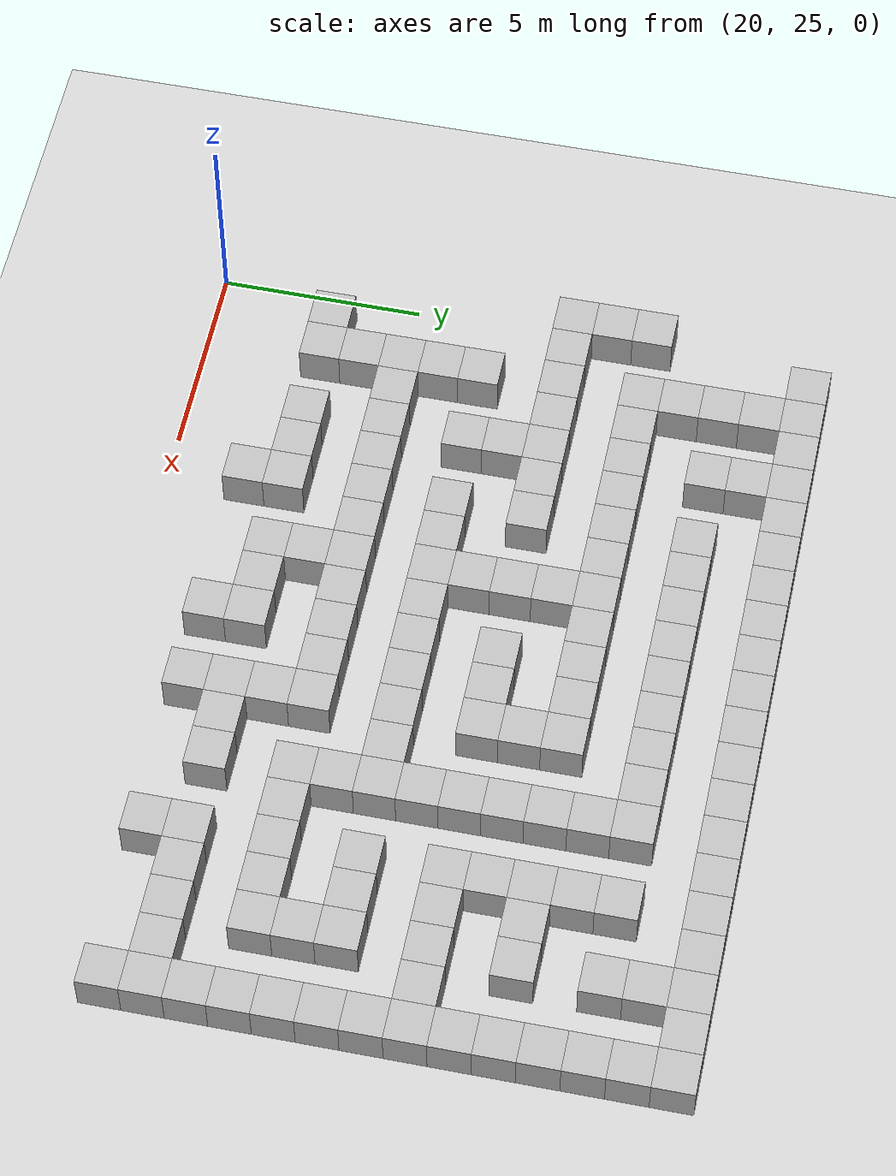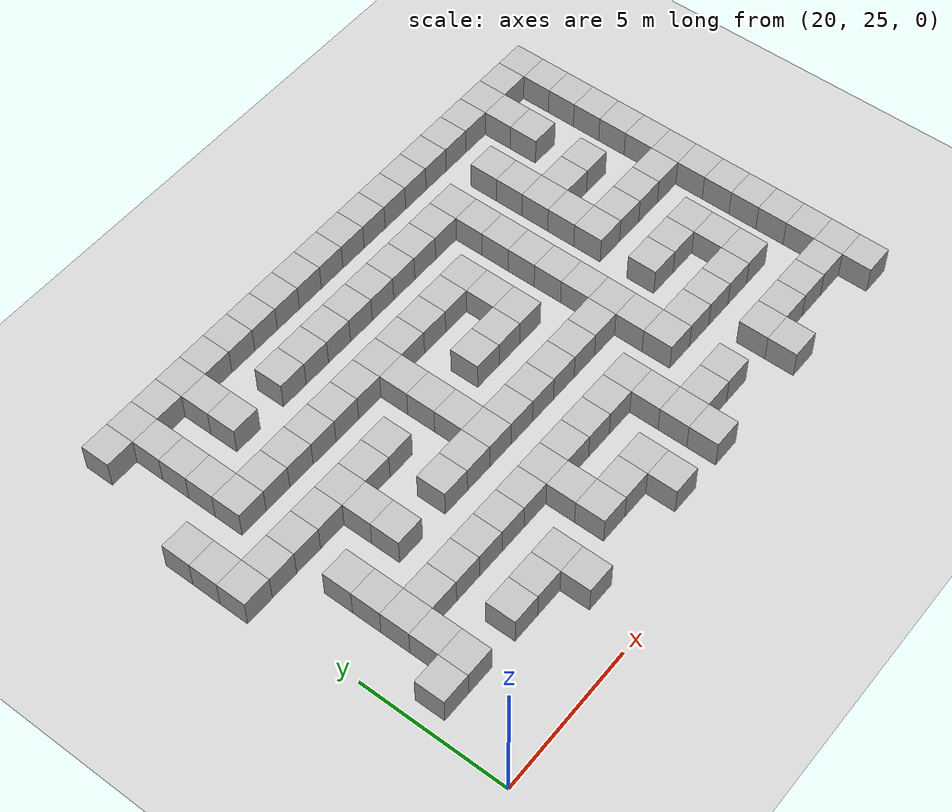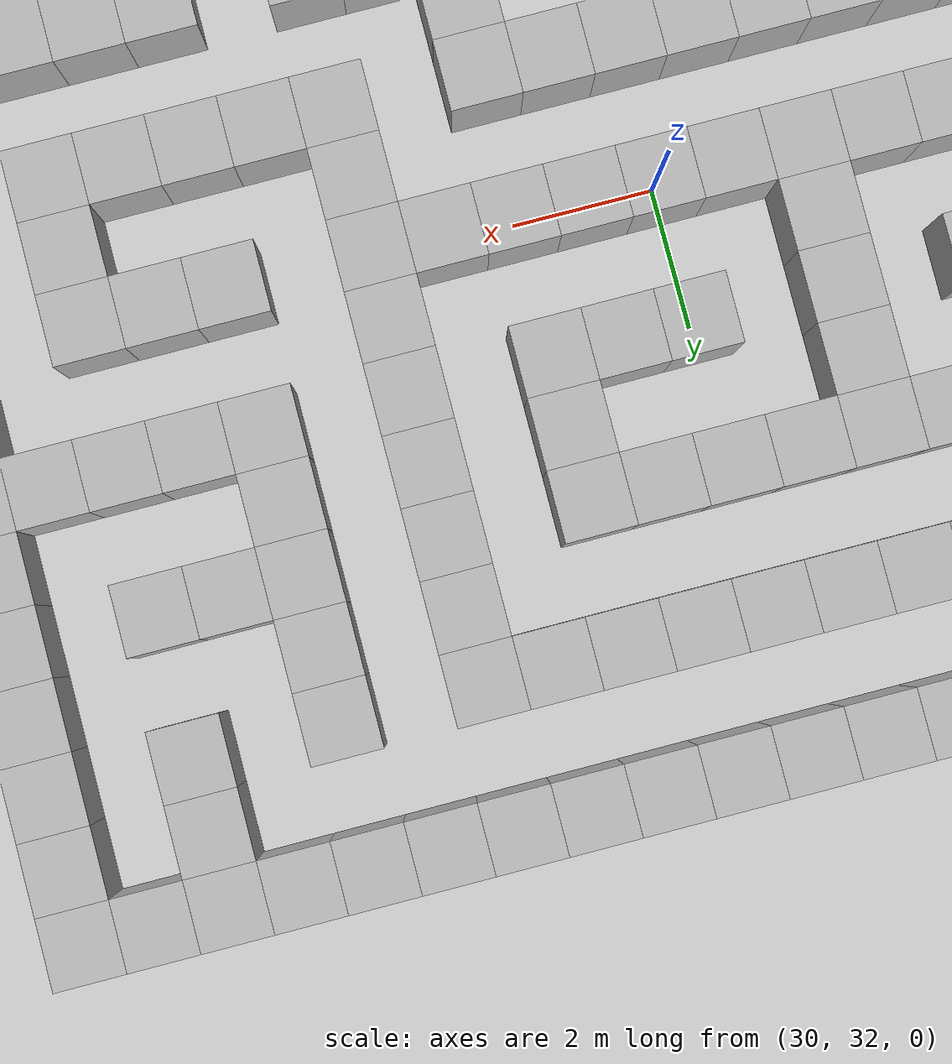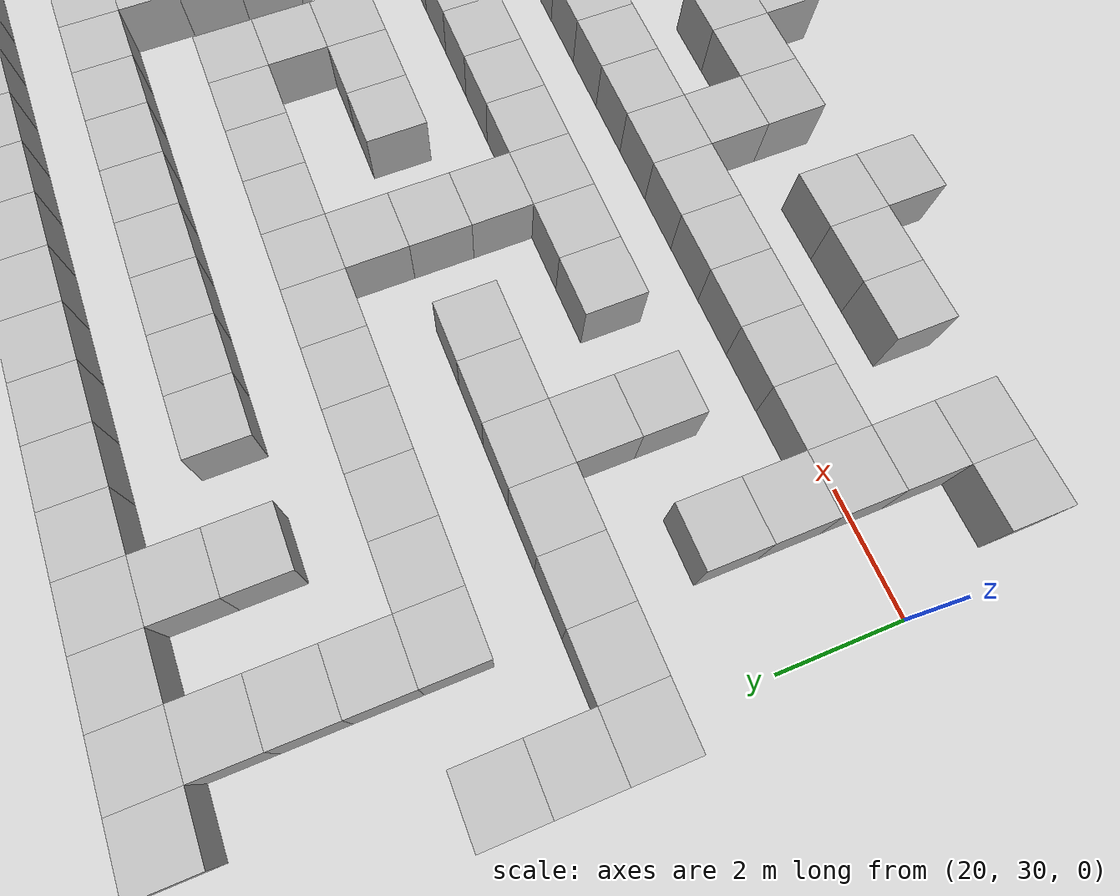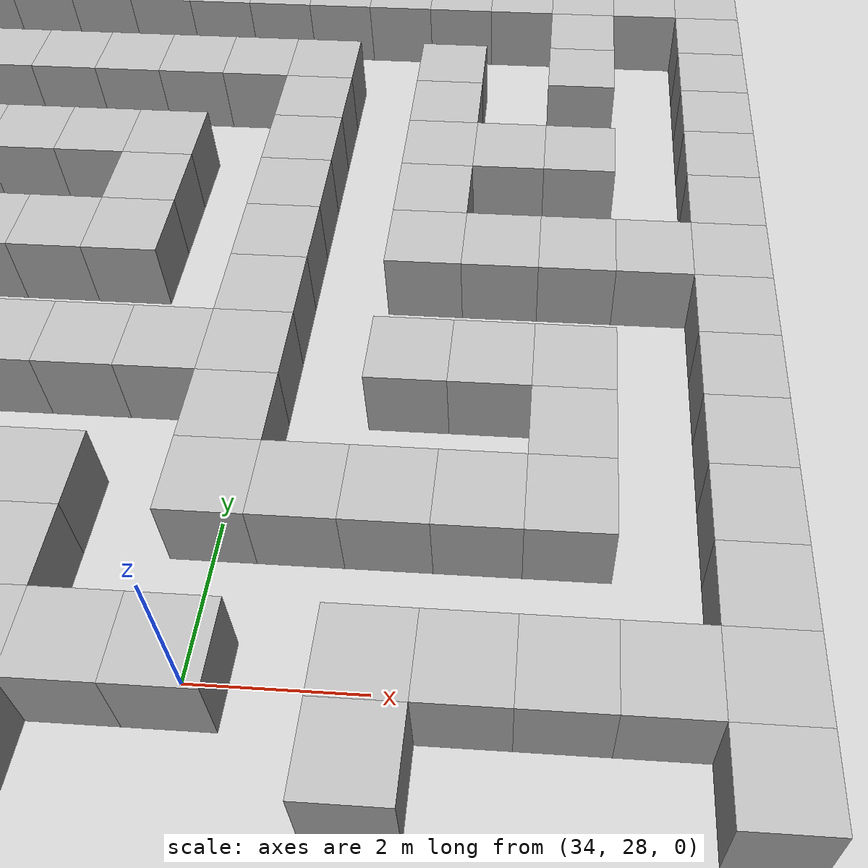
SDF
<sdf version="1.8">
 <world name="custom_maze">
  <model name="ground_plane">
   <static>1</static>
   <link name="link">
    <collision name="collision">
     <geometry><plane><normal>0 0 1</normal><size>100 100</size></plane></geometry>
    </collision>
    <visual name="visual">
     <geometry><plane><normal>0 0 1</normal><size>100 100</size></plane></geometry>
     <material>
      <ambient>0.8 0.8 0.8 1</ambient>
      <diffuse>0.8 0.8 0.8 1</diffuse>
      <specular>0.8 0.8 0.8 1</specular>
     </material>
     <plugin name="__default__" filename="__default__"/>
    </visual>
   </link>
   <plugin name="__default__" filename="__default__"/>
  </model>
  <model name="obstacles">
   <pose>0 0 0.5 0 0 0</pose>
   <static>true</static>
   <link name="wall2">
    <pose>29 32 0 0 0 0</pose>
    <static>true</static>
    <collision name="wall2_collision"><geometry><box><size>1 1 1</size></box></geometry></collision>
    <visual name="wall2_visual"><geometry><box><size>1 1 1</size></box></geometry></visual>
   </link>
   <link name="wall5">
    <pose>33 38 0 0 0 0</pose>
    <static>true</static>
    <collision name="wall5_collision"><geometry><box><size>1 1 1</size></box></geometry></collision>
    <visual name="wall5_visual"><geometry><box><size>1 1 1</size></box></geometry></visual>
   </link>
   <link name="wall7">
    <pose>25 34 0 0 0 0</pose>
    <static>true</static>
    <collision name="wall7_collision"><geometry><box><size>1 1 1</size></box></geometry></collision>
    <visual name="wall7_visual"><geometry><box><size>1 1 1</size></box></geometry></visual>
   </link>
   <link name="wall8">
    <pose>22 28 0 0 0 0</pose>
    <static>true</static>
    <collision name="wall8_collision"><geometry><box><size>1 1 1</size></box></geometry></collision>
    <visual name="wall8_visual"><geometry><box><size>1 1 1</size></box></geometry></visual>
   </link>
   <link name="wall23">
    <pose>40 31 0 0 0 0</pose>
    <static>true</static>
    <collision name="wall23_collision"><geometry><box><size>1 1 1</size></box></geometry></collision>
    <visual name="wall23_visual"><geometry><box><size>1 1 1</size></box></geometry></visual>
   </link>
   <link name="wall27">
    <pose>33 28 0 0 0 0</pose>
    <static>true</static>
    <collision name="wall27_collision"><geometry><box><size>1 1 1</size></box></geometry></collision>
    <visual name="wall27_visual"><geometry><box><size>1 1 1</size></box></geometry></visual>
   </link>
   <link name="wall32">
    <pose>36 38 0 0 0 0</pose>
    <static>true</static>
    <collision name="wall32_collision"><geometry><box><size>1 1 1</size></box></geometry></collision>
    <visual name="wall32_visual"><geometry><box><size>1 1 1</size></box></geometry></visual>
   </link>
   <link name="wall33">
    <pose>28 34 0 0 0 0</pose>
    <static>true</static>
    <collision name="wall33_collision"><geometry><box><size>1 1 1</size></box></geometry></collision>
    <visual name="wall33_visual"><geometry><box><size>1 1 1</size></box></geometry></visual>
   </link>
   <link name="wall50">
    <pose>36 28 0 0 0 0</pose>
    <static>true</static>
    <collision name="wall50_collision"><geometry><box><size>1 1 1</size></box></geometry></collision>
    <visual name="wall50_visual"><geometry><box><size>1 1 1</size></box></geometry></visual>
   </link>
   <link name="wall54">
    <pose>31 34 0 0 0 0</pose>
    <static>true</static>
    <collision name="wall54_collision"><geometry><box><size>1 1 1</size></box></geometry></collision>
    <visual name="wall54_visual"><geometry><box><size>1 1 1</size></box></geometry></visual>
   </link>
   <link name="wall57">
    <pose>32 35 0 0 0 0</pose>
    <static>true</static>
    <collision name="wall57_collision"><geometry><box><size>1 1 1</size></box></geometry></collision>
    <visual name="wall57_visual"><geometry><box><size>1 1 1</size></box></geometry></visual>
   </link>
   <link name="wall58">
    <pose>35 40 0 0 0 0</pose>
    <static>true</static>
    <collision name="wall58_collision"><geometry><box><size>1 1 1</size></box></geometry></collision>
    <visual name="wall58_visual"><geometry><box><size>1 1 1</size></box></geometry></visual>
   </link>
   <link name="wall74">
    <pose>39 28 0 0 0 0</pose>
    <static>true</static>
    <collision name="wall74_collision"><geometry><box><size>1 1 1</size></box></geometry></collision>
    <visual name="wall74_visual"><geometry><box><size>1 1 1</size></box></geometry></visual>
   </link>
   <link name="wall76">
    <pose>35 30 0 0 0 0</pose>
    <static>true</static>
    <collision name="wall76_collision"><geometry><box><size>1 1 1</size></box></geometry></collision>
    <visual name="wall76_visual"><geometry><box><size>1 1 1</size></box></geometry></visual>
   </link>
   <link name="wall78">
    <pose>30 36 0 0 0 0</pose>
    <static>true</static>
    <collision name="wall78_collision"><geometry><box><size>1 1 1</size></box></geometry></collision>
    <visual name="wall78_visual"><geometry><box><size>1 1 1</size></box></geometry></visual>
   </link>
   <link name="wall94">
    <pose>38 31 0 0 0 0</pose>
    <static>true</static>
    <collision name="wall94_collision"><geometry><box><size>1 1 1</size></box></geometry></collision>
    <visual name="wall94_visual"><geometry><box><size>1 1 1</size></box></geometry></visual>
   </link>
   <link name="wall102">
    <pose>34 38 0 0 0 0</pose>
    <static>true</static>
    <collision name="wall102_collision"><geometry><box><size>1 1 1</size></box></geometry></collision>
    <visual name="wall102_visual"><geometry><box><size>1 1 1</size></box></geometry></visual>
   </link>
   <link name="wall110">
    <pose>22 40 0 0 0 0</pose>
    <static>true</static>
    <collision name="wall110_collision"><geometry><box><size>1 1 1</size></box></geometry></collision>
    <visual name="wall110_visual"><geometry><box><size>1 1 1</size></box></geometry></visual>
   </link>
   <link name="wall118">
    <pose>34 28 0 0 0 0</pose>
    <static>true</static>
    <collision name="wall118_collision"><geometry><box><size>1 1 1</size></box></geometry></collision>
    <visual name="wall118_visual"><geometry><box><size>1 1 1</size></box></geometry></visual>
   </link>
   <link name="wall124">
    <pose>33 40 0 0 0 0</pose>
    <static>true</static>
    <collision name="wall124_collision"><geometry><box><size>1 1 1</size></box></geometry></collision>
    <visual name="wall124_visual"><geometry><box><size>1 1 1</size></box></geometry></visual>
   </link>
   <link name="wall126">
    <pose>25 36 0 0 0 0</pose>
    <static>true</static>
    <collision name="wall126_collision"><geometry><box><size>1 1 1</size></box></geometry></collision>
    <visual name="wall126_visual"><geometry><box><size>1 1 1</size></box></geometry></visual>
   </link>
   <link name="wall128">
    <pose>22 30 0 0 0 0</pose>
    <static>true</static>
    <collision name="wall128_collision"><geometry><box><size>1 1 1</size></box></geometry></collision>
    <visual name="wall128_visual"><geometry><box><size>1 1 1</size></box></geometry></visual>
   </link>
   <link name="wall138">
    <pose>36 27 0 0 0 0</pose>
    <static>true</static>
    <collision name="wall138_collision"><geometry><box><size>1 1 1</size></box></geometry></collision>
    <visual name="wall138_visual"><geometry><box><size>1 1 1</size></box></geometry></visual>
   </link>
   <link name="wall140">
    <pose>40 33 0 0 0 0</pose>
    <static>true</static>
    <collision name="wall140_collision"><geometry><box><size>1 1 1</size></box></geometry></collision>
    <visual name="wall140_visual"><geometry><box><size>1 1 1</size></box></geometry></visual>
   </link>
   <link name="wall144">
    <pose>32 34 0 0 0 0</pose>
    <static>true</static>
    <collision name="wall144_collision"><geometry><box><size>1 1 1</size></box></geometry></collision>
    <visual name="wall144_visual"><geometry><box><size>1 1 1</size></box></geometry></visual>
   </link>
   <link name="wall148">
    <pose>36 40 0 0 0 0</pose>
    <static>true</static>
    <collision name="wall148_collision"><geometry><box><size>1 1 1</size></box></geometry></collision>
    <visual name="wall148_visual"><geometry><box><size>1 1 1</size></box></geometry></visual>
   </link>
   <link name="wall149">
    <pose>28 36 0 0 0 0</pose>
    <static>true</static>
    <collision name="wall149_collision"><geometry><box><size>1 1 1</size></box></geometry></collision>
    <visual name="wall149_visual"><geometry><box><size>1 1 1</size></box></geometry></visual>
   </link>
   <link name="wall163">
    <pose>36 30 0 0 0 0</pose>
    <static>true</static>
    <collision name="wall163_collision"><geometry><box><size>1 1 1</size></box></geometry></collision>
    <visual name="wall163_visual"><geometry><box><size>1 1 1</size></box></geometry></visual>
   </link>
   <link name="wall167">
    <pose>39 40 0 0 0 0</pose>
    <static>true</static>
    <collision name="wall167_collision"><geometry><box><size>1 1 1</size></box></geometry></collision>
    <visual name="wall167_visual"><geometry><box><size>1 1 1</size></box></geometry></visual>
   </link>
   <link name="wall168">
    <pose>31 36 0 0 0 0</pose>
    <static>true</static>
    <collision name="wall168_collision"><geometry><box><size>1 1 1</size></box></geometry></collision>
    <visual name="wall168_visual"><geometry><box><size>1 1 1</size></box></geometry></visual>
   </link>
   <link name="wall170">
    <pose>24 33 0 0 0 0</pose>
    <static>true</static>
    <collision name="wall170_collision"><geometry><box><size>1 1 1</size></box></geometry></collision>
    <visual name="wall170_visual"><geometry><box><size>1 1 1</size></box></geometry></visual>
   </link>
   <link name="wall188">
    <pose>32 27 0 0 0 0</pose>
    <static>true</static>
    <collision name="wall188_collision"><geometry><box><size>1 1 1</size></box></geometry></collision>
    <visual name="wall188_visual"><geometry><box><size>1 1 1</size></box></geometry></visual>
   </link>
   <link name="wall191">
    <pose>30 38 0 0 0 0</pose>
    <static>true</static>
    <collision name="wall191_collision"><geometry><box><size>1 1 1</size></box></geometry></collision>
    <visual name="wall191_visual"><geometry><box><size>1 1 1</size></box></geometry></visual>
   </link>
   <link name="wall203">
    <pose>37 32 0 0 0 0</pose>
    <static>true</static>
    <collision name="wall203_collision"><geometry><box><size>1 1 1</size></box></geometry></collision>
    <visual name="wall203_visual"><geometry><box><size>1 1 1</size></box></geometry></visual>
   </link>
   <link name="wall208">
    <pose>30 28 0 0 0 0</pose>
    <static>true</static>
    <collision name="wall208_collision"><geometry><box><size>1 1 1</size></box></geometry></collision>
    <visual name="wall208_visual"><geometry><box><size>1 1 1</size></box></geometry></visual>
   </link>
   <link name="wall211">
    <pose>22 29 0 0 0 0</pose>
    <static>true</static>
    <collision name="wall211_collision"><geometry><box><size>1 1 1</size></box></geometry></collision>
    <visual name="wall211_visual"><geometry><box><size>1 1 1</size></box></geometry></visual>
   </link>
   <link name="wall212">
    <pose>34 40 0 0 0 0</pose>
    <static>true</static>
    <collision name="wall212_collision"><geometry><box><size>1 1 1</size></box></geometry></collision>
    <visual name="wall212_visual"><geometry><box><size>1 1 1</size></box></geometry></visual>
   </link>
   <link name="wall228">
    <pose>34 30 0 0 0 0</pose>
    <static>true</static>
    <collision name="wall228_collision"><geometry><box><size>1 1 1</size></box></geometry></collision>
    <visual name="wall228_visual"><geometry><box><size>1 1 1</size></box></geometry></visual>
   </link>
   <link name="wall232">
    <pose>29 36 0 0 0 0</pose>
    <static>true</static>
    <collision name="wall232_collision"><geometry><box><size>1 1 1</size></box></geometry></collision>
    <visual name="wall232_visual"><geometry><box><size>1 1 1</size></box></geometry></visual>
   </link>
   <link name="wall237">
    <pose>22 32 0 0 0 0</pose>
    <static>true</static>
    <collision name="wall237_collision"><geometry><box><size>1 1 1</size></box></geometry></collision>
    <visual name="wall237_visual"><geometry><box><size>1 1 1</size></box></geometry></visual>
   </link>
   <link name="wall249">
    <pose>40 35 0 0 0 0</pose>
    <static>true</static>
    <collision name="wall249_collision"><geometry><box><size>1 1 1</size></box></geometry></collision>
    <visual name="wall249_visual"><geometry><box><size>1 1 1</size></box></geometry></visual>
   </link>
   <link name="wall252">
    <pose>25 28 0 0 0 0</pose>
    <static>true</static>
    <collision name="wall252_collision"><geometry><box><size>1 1 1</size></box></geometry></collision>
    <visual name="wall252_visual"><geometry><box><size>1 1 1</size></box></geometry></visual>
   </link>
   <link name="wall253">
    <pose>32 36 0 0 0 0</pose>
    <static>true</static>
    <collision name="wall253_collision"><geometry><box><size>1 1 1</size></box></geometry></collision>
    <visual name="wall253_visual"><geometry><box><size>1 1 1</size></box></geometry></visual>
   </link>
   <link name="wall255">
    <pose>24 32 0 0 0 0</pose>
    <static>true</static>
    <collision name="wall255_collision"><geometry><box><size>1 1 1</size></box></geometry></collision>
    <visual name="wall255_visual"><geometry><box><size>1 1 1</size></box></geometry></visual>
   </link>
   <link name="wall257">
    <pose>28 38 0 0 0 0</pose>
    <static>true</static>
    <collision name="wall257_collision"><geometry><box><size>1 1 1</size></box></geometry></collision>
    <visual name="wall257_visual"><geometry><box><size>1 1 1</size></box></geometry></visual>
   </link>
   <link name="wall272">
    <pose>36 32 0 0 0 0</pose>
    <static>true</static>
    <collision name="wall272_collision"><geometry><box><size>1 1 1</size></box></geometry></collision>
    <visual name="wall272_visual"><geometry><box><size>1 1 1</size></box></geometry></visual>
   </link>
   <link name="wall273">
    <pose>28 28 0 0 0 0</pose>
    <static>true</static>
    <collision name="wall273_collision"><geometry><box><size>1 1 1</size></box></geometry></collision>
    <visual name="wall273_visual"><geometry><box><size>1 1 1</size></box></geometry></visual>
   </link>
   <link name="wall277">
    <pose>31 38 0 0 0 0</pose>
    <static>true</static>
    <collision name="wall277_collision"><geometry><box><size>1 1 1</size></box></geometry></collision>
    <visual name="wall277_visual"><geometry><box><size>1 1 1</size></box></geometry></visual>
   </link>
   <link name="wall278">
    <pose>23 34 0 0 0 0</pose>
    <static>true</static>
    <collision name="wall278_collision"><geometry><box><size>1 1 1</size></box></geometry></collision>
    <visual name="wall278_visual"><geometry><box><size>1 1 1</size></box></geometry></visual>
   </link>
   <link name="wall290">
    <pose>38 32 0 0 0 0</pose>
    <static>true</static>
    <collision name="wall290_collision"><geometry><box><size>1 1 1</size></box></geometry></collision>
    <visual name="wall290_visual"><geometry><box><size>1 1 1</size></box></geometry></visual>
   </link>
   <link name="wall293">
    <pose>30 27 0 0 0 0</pose>
    <static>true</static>
    <collision name="wall293_collision"><geometry><box><size>1 1 1</size></box></geometry></collision>
    <visual name="wall293_visual"><geometry><box><size>1 1 1</size></box></geometry></visual>
   </link>
   <link name="wall298">
    <pose>26 34 0 0 0 0</pose>
    <static>true</static>
    <collision name="wall298_collision"><geometry><box><size>1 1 1</size></box></geometry></collision>
    <visual name="wall298_visual"><geometry><box><size>1 1 1</size></box></geometry></visual>
   </link>
   <link name="wall301">
    <pose>30 40 0 0 0 0</pose>
    <static>true</static>
    <collision name="wall301_collision"><geometry><box><size>1 1 1</size></box></geometry></collision>
    <visual name="wall301_visual"><geometry><box><size>1 1 1</size></box></geometry></visual>
   </link>
   <link name="wall314">
    <pose>37 34 0 0 0 0</pose>
    <static>true</static>
    <collision name="wall314_collision"><geometry><box><size>1 1 1</size></box></geometry></collision>
    <visual name="wall314_visual"><geometry><box><size>1 1 1</size></box></geometry></visual>
   </link>
   <link name="wall319">
    <pose>30 30 0 0 0 0</pose>
    <static>true</static>
    <collision name="wall319_collision"><geometry><box><size>1 1 1</size></box></geometry></collision>
    <visual name="wall319_visual"><geometry><box><size>1 1 1</size></box></geometry></visual>
   </link>
   <link name="wall321">
    <pose>22 31 0 0 0 0</pose>
    <static>true</static>
    <collision name="wall321_collision"><geometry><box><size>1 1 1</size></box></geometry></collision>
    <visual name="wall321_visual"><geometry><box><size>1 1 1</size></box></geometry></visual>
   </link>
   <link name="wall335">
    <pose>40 34 0 0 0 0</pose>
    <static>true</static>
    <collision name="wall335_collision"><geometry><box><size>1 1 1</size></box></geometry></collision>
    <visual name="wall335_visual"><geometry><box><size>1 1 1</size></box></geometry></visual>
   </link>
   <link name="wall341">
    <pose>29 38 0 0 0 0</pose>
    <static>true</static>
    <collision name="wall341_collision"><geometry><box><size>1 1 1</size></box></geometry></collision>
    <visual name="wall341_visual"><geometry><box><size>1 1 1</size></box></geometry></visual>
   </link>
   <link name="wall342">
    <pose>21 34 0 0 0 0</pose>
    <static>true</static>
    <collision name="wall342_collision"><geometry><box><size>1 1 1</size></box></geometry></collision>
    <visual name="wall342_visual"><geometry><box><size>1 1 1</size></box></geometry></visual>
   </link>
   <link name="wall346">
    <pose>25 40 0 0 0 0</pose>
    <static>true</static>
    <collision name="wall346_collision"><geometry><box><size>1 1 1</size></box></geometry></collision>
    <visual name="wall346_visual"><geometry><box><size>1 1 1</size></box></geometry></visual>
   </link>
   <link name="wall358">
    <pose>29 28 0 0 0 0</pose>
    <static>true</static>
    <collision name="wall358_collision"><geometry><box><size>1 1 1</size></box></geometry></collision>
    <visual name="wall358_visual"><geometry><box><size>1 1 1</size></box></geometry></visual>
   </link>
   <link name="wall360">
    <pose>40 37 0 0 0 0</pose>
    <static>true</static>
    <collision name="wall360_collision"><geometry><box><size>1 1 1</size></box></geometry></collision>
    <visual name="wall360_visual"><geometry><box><size>1 1 1</size></box></geometry></visual>
   </link>
   <link name="wall363">
    <pose>32 38 0 0 0 0</pose>
    <static>true</static>
    <collision name="wall363_collision"><geometry><box><size>1 1 1</size></box></geometry></collision>
    <visual name="wall363_visual"><geometry><box><size>1 1 1</size></box></geometry></visual>
   </link>
   <link name="wall364">
    <pose>24 34 0 0 0 0</pose>
    <static>true</static>
    <collision name="wall364_collision"><geometry><box><size>1 1 1</size></box></geometry></collision>
    <visual name="wall364_visual"><geometry><box><size>1 1 1</size></box></geometry></visual>
   </link>
   <link name="wall367">
    <pose>28 40 0 0 0 0</pose>
    <static>true</static>
    <collision name="wall367_collision"><geometry><box><size>1 1 1</size></box></geometry></collision>
    <visual name="wall367_visual"><geometry><box><size>1 1 1</size></box></geometry></visual>
   </link>
   <link name="wall376">
    <pose>32 28 0 0 0 0</pose>
    <static>true</static>
    <collision name="wall376_collision"><geometry><box><size>1 1 1</size></box></geometry></collision>
    <visual name="wall376_visual"><geometry><box><size>1 1 1</size></box></geometry></visual>
   </link>
   <link name="wall381">
    <pose>28 30 0 0 0 0</pose>
    <static>true</static>
    <collision name="wall381_collision"><geometry><box><size>1 1 1</size></box></geometry></collision>
    <visual name="wall381_visual"><geometry><box><size>1 1 1</size></box></geometry></visual>
   </link>
   <link name="wall384">
    <pose>31 40 0 0 0 0</pose>
    <static>true</static>
    <collision name="wall384_collision"><geometry><box><size>1 1 1</size></box></geometry></collision>
    <visual name="wall384_visual"><geometry><box><size>1 1 1</size></box></geometry></visual>
   </link>
   <link name="wall386">
    <pose>23 36 0 0 0 0</pose>
    <static>true</static>
    <collision name="wall386_collision"><geometry><box><size>1 1 1</size></box></geometry></collision>
    <visual name="wall386_visual"><geometry><box><size>1 1 1</size></box></geometry></visual>
   </link>
   <link name="wall398">
    <pose>38 34 0 0 0 0</pose>
    <static>true</static>
    <collision name="wall398_collision"><geometry><box><size>1 1 1</size></box></geometry></collision>
    <visual name="wall398_visual"><geometry><box><size>1 1 1</size></box></geometry></visual>
   </link>
   <link name="wall402">
    <pose>39 34 0 0 0 0</pose>
    <static>true</static>
    <collision name="wall402_collision"><geometry><box><size>1 1 1</size></box></geometry></collision>
    <visual name="wall402_visual"><geometry><box><size>1 1 1</size></box></geometry></visual>
   </link>
   <link name="wall404">
    <pose>31 30 0 0 0 0</pose>
    <static>true</static>
    <collision name="wall404_collision"><geometry><box><size>1 1 1</size></box></geometry></collision>
    <visual name="wall404_visual"><geometry><box><size>1 1 1</size></box></geometry></visual>
   </link>
   <link name="wall408">
    <pose>26 36 0 0 0 0</pose>
    <static>true</static>
    <collision name="wall408_collision"><geometry><box><size>1 1 1</size></box></geometry></collision>
    <visual name="wall408_visual"><geometry><box><size>1 1 1</size></box></geometry></visual>
   </link>
   <link name="wall429">
    <pose>34 31 0 0 0 0</pose>
    <static>true</static>
    <collision name="wall429_collision"><geometry><box><size>1 1 1</size></box></geometry></collision>
    <visual name="wall429_visual"><geometry><box><size>1 1 1</size></box></geometry></visual>
   </link>
   <link name="wall430">
    <pose>37 36 0 0 0 0</pose>
    <static>true</static>
    <collision name="wall430_collision"><geometry><box><size>1 1 1</size></box></geometry></collision>
    <visual name="wall430_visual"><geometry><box><size>1 1 1</size></box></geometry></visual>
   </link>
   <link name="wall435">
    <pose>30 32 0 0 0 0</pose>
    <static>true</static>
    <collision name="wall435_collision"><geometry><box><size>1 1 1</size></box></geometry></collision>
    <visual name="wall435_visual"><geometry><box><size>1 1 1</size></box></geometry></visual>
   </link>
   <link name="wall452">
    <pose>40 36 0 0 0 0</pose>
    <static>true</static>
    <collision name="wall452_collision"><geometry><box><size>1 1 1</size></box></geometry></collision>
    <visual name="wall452_visual"><geometry><box><size>1 1 1</size></box></geometry></visual>
   </link>
   <link name="wall456">
    <pose>29 40 0 0 0 0</pose>
    <static>true</static>
    <collision name="wall456_collision"><geometry><box><size>1 1 1</size></box></geometry></collision>
    <visual name="wall456_visual"><geometry><box><size>1 1 1</size></box></geometry></visual>
   </link>
   <link name="wall472">
    <pose>28 29 0 0 0 0</pose>
    <static>true</static>
    <collision name="wall472_collision"><geometry><box><size>1 1 1</size></box></geometry></collision>
    <visual name="wall472_visual"><geometry><box><size>1 1 1</size></box></geometry></visual>
   </link>
   <link name="wall475">
    <pose>29 30 0 0 0 0</pose>
    <static>true</static>
    <collision name="wall475_collision"><geometry><box><size>1 1 1</size></box></geometry></collision>
    <visual name="wall475_visual"><geometry><box><size>1 1 1</size></box></geometry></visual>
   </link>
   <link name="wall479">
    <pose>32 40 0 0 0 0</pose>
    <static>true</static>
    <collision name="wall479_collision"><geometry><box><size>1 1 1</size></box></geometry></collision>
    <visual name="wall479_visual"><geometry><box><size>1 1 1</size></box></geometry></visual>
   </link>
   <link name="wall480">
    <pose>24 36 0 0 0 0</pose>
    <static>true</static>
    <collision name="wall480_collision"><geometry><box><size>1 1 1</size></box></geometry></collision>
    <visual name="wall480_visual"><geometry><box><size>1 1 1</size></box></geometry></visual>
   </link>
   <link name="wall497">
    <pose>32 30 0 0 0 0</pose>
    <static>true</static>
    <collision name="wall497_collision"><geometry><box><size>1 1 1</size></box></geometry></collision>
    <visual name="wall497_visual"><geometry><box><size>1 1 1</size></box></geometry></visual>
   </link>
   <link name="wall503">
    <pose>27 36 0 0 0 0</pose>
    <static>true</static>
    <collision name="wall503_collision"><geometry><box><size>1 1 1</size></box></geometry></collision>
    <visual name="wall503_visual"><geometry><box><size>1 1 1</size></box></geometry></visual>
   </link>
   <link name="wall521">
    <pose>38 36 0 0 0 0</pose>
    <static>true</static>
    <collision name="wall521_collision"><geometry><box><size>1 1 1</size></box></geometry></collision>
    <visual name="wall521_visual"><geometry><box><size>1 1 1</size></box></geometry></visual>
   </link>
   <link name="wall524">
    <pose>31 32 0 0 0 0</pose>
    <static>true</static>
    <collision name="wall524_collision"><geometry><box><size>1 1 1</size></box></geometry></collision>
    <visual name="wall524_visual"><geometry><box><size>1 1 1</size></box></geometry></visual>
   </link>
   <link name="wall525">
    <pose>26 38 0 0 0 0</pose>
    <static>true</static>
    <collision name="wall525_collision"><geometry><box><size>1 1 1</size></box></geometry></collision>
    <visual name="wall525_visual"><geometry><box><size>1 1 1</size></box></geometry></visual>
   </link>
   <link name="wall542">
    <pose>33 32 0 0 0 0</pose>
    <static>true</static>
    <collision name="wall542_collision"><geometry><box><size>1 1 1</size></box></geometry></collision>
    <visual name="wall542_visual"><geometry><box><size>1 1 1</size></box></geometry></visual>
   </link>
   <link name="wall547">
    <pose>34 33 0 0 0 0</pose>
    <static>true</static>
    <collision name="wall547_collision"><geometry><box><size>1 1 1</size></box></geometry></collision>
    <visual name="wall547_visual"><geometry><box><size>1 1 1</size></box></geometry></visual>
   </link>
   <link name="wall548">
    <pose>26 28 0 0 0 0</pose>
    <static>true</static>
    <collision name="wall548_collision"><geometry><box><size>1 1 1</size></box></geometry></collision>
    <visual name="wall548_visual"><geometry><box><size>1 1 1</size></box></geometry></visual>
   </link>
   <link name="wall565">
    <pose>37 28 0 0 0 0</pose>
    <static>true</static>
    <collision name="wall565_collision"><geometry><box><size>1 1 1</size></box></geometry></collision>
    <visual name="wall565_visual"><geometry><box><size>1 1 1</size></box></geometry></visual>
   </link>
   <link name="wall569">
    <pose>40 38 0 0 0 0</pose>
    <static>true</static>
    <collision name="wall569_collision"><geometry><box><size>1 1 1</size></box></geometry></collision>
    <visual name="wall569_visual"><geometry><box><size>1 1 1</size></box></geometry></visual>
   </link>
   <link name="wall581">
    <pose>40 28 0 0 0 0</pose>
    <static>true</static>
    <collision name="wall581_collision"><geometry><box><size>1 1 1</size></box></geometry></collision>
    <visual name="wall581_visual"><geometry><box><size>1 1 1</size></box></geometry></visual>
   </link>
   <link name="wall583">
    <pose>32 29 0 0 0 0</pose>
    <static>true</static>
    <collision name="wall583_collision"><geometry><box><size>1 1 1</size></box></geometry></collision>
    <visual name="wall583_visual"><geometry><box><size>1 1 1</size></box></geometry></visual>
   </link>
   <link name="wall585">
    <pose>36 35 0 0 0 0</pose>
    <static>true</static>
    <collision name="wall585_collision"><geometry><box><size>1 1 1</size></box></geometry></collision>
    <visual name="wall585_visual"><geometry><box><size>1 1 1</size></box></geometry></visual>
   </link>
   <link name="wall588">
    <pose>21 28 0 0 0 0</pose>
    <static>true</static>
    <collision name="wall588_collision"><geometry><box><size>1 1 1</size></box></geometry></collision>
    <visual name="wall588_visual"><geometry><box><size>1 1 1</size></box></geometry></visual>
   </link>
   <link name="wall591">
    <pose>24 38 0 0 0 0</pose>
    <static>true</static>
    <collision name="wall591_collision"><geometry><box><size>1 1 1</size></box></geometry></collision>
    <visual name="wall591_visual"><geometry><box><size>1 1 1</size></box></geometry></visual>
   </link>
   <link name="wall607">
    <pose>32 32 0 0 0 0</pose>
    <static>true</static>
    <collision name="wall607_collision"><geometry><box><size>1 1 1</size></box></geometry></collision>
    <visual name="wall607_visual"><geometry><box><size>1 1 1</size></box></geometry></visual>
   </link>
   <link name="wall608">
    <pose>24 28 0 0 0 0</pose>
    <static>true</static>
    <collision name="wall608_collision"><geometry><box><size>1 1 1</size></box></geometry></collision>
    <visual name="wall608_visual"><geometry><box><size>1 1 1</size></box></geometry></visual>
   </link>
   <link name="wall612">
    <pose>27 38 0 0 0 0</pose>
    <static>true</static>
    <collision name="wall612_collision"><geometry><box><size>1 1 1</size></box></geometry></collision>
    <visual name="wall612_visual"><geometry><box><size>1 1 1</size></box></geometry></visual>
   </link>
   <link name="wall614">
    <pose>20 35 0 0 0 0</pose>
    <static>true</static>
    <collision name="wall614_collision"><geometry><box><size>1 1 1</size></box></geometry></collision>
    <visual name="wall614_visual"><geometry><box><size>1 1 1</size></box></geometry></visual>
   </link>
   <link name="wall616">
    <pose>23 40 0 0 0 0</pose>
    <static>true</static>
    <collision name="wall616_collision"><geometry><box><size>1 1 1</size></box></geometry></collision>
    <visual name="wall616_visual"><geometry><box><size>1 1 1</size></box></geometry></visual>
   </link>
   <link name="wall625">
    <pose>34 32 0 0 0 0</pose>
    <static>true</static>
    <collision name="wall625_collision"><geometry><box><size>1 1 1</size></box></geometry></collision>
    <visual name="wall625_visual"><geometry><box><size>1 1 1</size></box></geometry></visual>
   </link>
   <link name="wall629">
    <pose>26 27 0 0 0 0</pose>
    <static>true</static>
    <collision name="wall629_collision"><geometry><box><size>1 1 1</size></box></geometry></collision>
    <visual name="wall629_visual"><geometry><box><size>1 1 1</size></box></geometry></visual>
   </link>
   <link name="wall630">
    <pose>38 38 0 0 0 0</pose>
    <static>true</static>
    <collision name="wall630_collision"><geometry><box><size>1 1 1</size></box></geometry></collision>
    <visual name="wall630_visual"><geometry><box><size>1 1 1</size></box></geometry></visual>
   </link>
   <link name="wall635">
    <pose>23 30 0 0 0 0</pose>
    <static>true</static>
    <collision name="wall635_collision"><geometry><box><size>1 1 1</size></box></geometry></collision>
    <visual name="wall635_visual"><geometry><box><size>1 1 1</size></box></geometry></visual>
   </link>
   <link name="wall636">
    <pose>22 34 0 0 0 0</pose>
    <static>true</static>
    <collision name="wall636_collision"><geometry><box><size>1 1 1</size></box></geometry></collision>
    <visual name="wall636_visual"><geometry><box><size>1 1 1</size></box></geometry></visual>
   </link>
   <link name="wall637">
    <pose>26 40 0 0 0 0</pose>
    <static>true</static>
    <collision name="wall637_collision"><geometry><box><size>1 1 1</size></box></geometry></collision>
    <visual name="wall637_visual"><geometry><box><size>1 1 1</size></box></geometry></visual>
   </link>
   <link name="wall648">
    <pose>38 28 0 0 0 0</pose>
    <static>true</static>
    <collision name="wall648_collision"><geometry><box><size>1 1 1</size></box></geometry></collision>
    <visual name="wall648_visual"><geometry><box><size>1 1 1</size></box></geometry></visual>
   </link>
   <link name="wall653">
    <pose>25 30 0 0 0 0</pose>
    <static>true</static>
    <collision name="wall653_collision"><geometry><box><size>1 1 1</size></box></geometry></collision>
    <visual name="wall653_visual"><geometry><box><size>1 1 1</size></box></geometry></visual>
   </link>
   <link name="wall657">
    <pose>34 35 0 0 0 0</pose>
    <static>true</static>
    <collision name="wall657_collision"><geometry><box><size>1 1 1</size></box></geometry></collision>
    <visual name="wall657_visual"><geometry><box><size>1 1 1</size></box></geometry></visual>
   </link>
   <link name="wall658">
    <pose>37 40 0 0 0 0</pose>
    <static>true</static>
    <collision name="wall658_collision"><geometry><box><size>1 1 1</size></box></geometry></collision>
    <visual name="wall658_visual"><geometry><box><size>1 1 1</size></box></geometry></visual>
   </link>
   <link name="wall659">
    <pose>26 30 0 0 0 0</pose>
    <static>true</static>
    <collision name="wall659_collision"><geometry><box><size>1 1 1</size></box></geometry></collision>
    <visual name="wall659_visual"><geometry><box><size>1 1 1</size></box></geometry></visual>
   </link>
   <link name="wall666">
    <pose>22 37 0 0 0 0</pose>
    <static>true</static>
    <collision name="wall666_collision"><geometry><box><size>1 1 1</size></box></geometry></collision>
    <visual name="wall666_visual"><geometry><box><size>1 1 1</size></box></geometry></visual>
   </link>
   <link name="wall670">
    <pose>40 27 0 0 0 0</pose>
    <static>true</static>
    <collision name="wall670_collision"><geometry><box><size>1 1 1</size></box></geometry></collision>
    <visual name="wall670_visual"><geometry><box><size>1 1 1</size></box></geometry></visual>
   </link>
   <link name="wall680">
    <pose>37 30 0 0 0 0</pose>
    <static>true</static>
    <collision name="wall680_collision"><geometry><box><size>1 1 1</size></box></geometry></collision>
    <visual name="wall680_visual"><geometry><box><size>1 1 1</size></box></geometry></visual>
   </link>
   <link name="wall681">
    <pose>36 34 0 0 0 0</pose>
    <static>true</static>
    <collision name="wall681_collision"><geometry><box><size>1 1 1</size></box></geometry></collision>
    <visual name="wall681_visual"><geometry><box><size>1 1 1</size></box></geometry></visual>
   </link>
   <link name="wall684">
    <pose>40 40 0 0 0 0</pose>
    <static>true</static>
    <collision name="wall684_collision"><geometry><box><size>1 1 1</size></box></geometry></collision>
    <visual name="wall684_visual"><geometry><box><size>1 1 1</size></box></geometry></visual>
   </link>
   <link name="wall692">
    <pose>21 40 0 0 0 0</pose>
    <static>true</static>
    <collision name="wall692_collision"><geometry><box><size>1 1 1</size></box></geometry></collision>
    <visual name="wall692_visual"><geometry><box><size>1 1 1</size></box></geometry></visual>
   </link>
   <link name="wall700">
    <pose>40 30 0 0 0 0</pose>
    <static>true</static>
    <collision name="wall700_collision"><geometry><box><size>1 1 1</size></box></geometry></collision>
    <visual name="wall700_visual"><geometry><box><size>1 1 1</size></box></geometry></visual>
   </link>
   <link name="wall705">
    <pose>36 37 0 0 0 0</pose>
    <static>true</static>
    <collision name="wall705_collision"><geometry><box><size>1 1 1</size></box></geometry></collision>
    <visual name="wall705_visual"><geometry><box><size>1 1 1</size></box></geometry></visual>
   </link>
   <link name="wall706">
    <pose>28 33 0 0 0 0</pose>
    <static>true</static>
    <collision name="wall706_collision"><geometry><box><size>1 1 1</size></box></geometry></collision>
    <visual name="wall706_visual"><geometry><box><size>1 1 1</size></box></geometry></visual>
   </link>
   <link name="wall710">
    <pose>20 34 0 0 0 0</pose>
    <static>true</static>
    <collision name="wall710_collision"><geometry><box><size>1 1 1</size></box></geometry></collision>
    <visual name="wall710_visual"><geometry><box><size>1 1 1</size></box></geometry></visual>
   </link>
   <link name="wall714">
    <pose>24 40 0 0 0 0</pose>
    <static>true</static>
    <collision name="wall714_collision"><geometry><box><size>1 1 1</size></box></geometry></collision>
    <visual name="wall714_visual"><geometry><box><size>1 1 1</size></box></geometry></visual>
   </link>
   <link name="wall725">
    <pose>24 30 0 0 0 0</pose>
    <static>true</static>
    <collision name="wall725_collision"><geometry><box><size>1 1 1</size></box></geometry></collision>
    <visual name="wall725_visual"><geometry><box><size>1 1 1</size></box></geometry></visual>
   </link>
   <link name="wall730">
    <pose>27 40 0 0 0 0</pose>
    <static>true</static>
    <collision name="wall730_collision"><geometry><box><size>1 1 1</size></box></geometry></collision>
    <visual name="wall730_visual"><geometry><box><size>1 1 1</size></box></geometry></visual>
   </link>
   <link name="wall745">
    <pose>34 34 0 0 0 0</pose>
    <static>true</static>
    <collision name="wall745_collision"><geometry><box><size>1 1 1</size></box></geometry></collision>
    <visual name="wall745_visual"><geometry><box><size>1 1 1</size></box></geometry></visual>
   </link>
   <link name="wall748">
    <pose>38 40 0 0 0 0</pose>
    <static>true</static>
    <collision name="wall748_collision"><geometry><box><size>1 1 1</size></box></geometry></collision>
    <visual name="wall748_visual"><geometry><box><size>1 1 1</size></box></geometry></visual>
   </link>
   <link name="wall750">
    <pose>27 30 0 0 0 0</pose>
    <static>true</static>
    <collision name="wall750_collision"><geometry><box><size>1 1 1</size></box></geometry></collision>
    <visual name="wall750_visual"><geometry><box><size>1 1 1</size></box></geometry></visual>
   </link>
   <link name="wall757">
    <pose>22 36 0 0 0 0</pose>
    <static>true</static>
    <collision name="wall757_collision"><geometry><box><size>1 1 1</size></box></geometry></collision>
    <visual name="wall757_visual"><geometry><box><size>1 1 1</size></box></geometry></visual>
   </link>
   <link name="wall768">
    <pose>38 30 0 0 0 0</pose>
    <static>true</static>
    <collision name="wall768_collision"><geometry><box><size>1 1 1</size></box></geometry></collision>
    <visual name="wall768_visual"><geometry><box><size>1 1 1</size></box></geometry></visual>
   </link>
   <link name="wall771">
    <pose>40 39 0 0 0 0</pose>
    <static>true</static>
    <collision name="wall771_collision"><geometry><box><size>1 1 1</size></box></geometry></collision>
    <visual name="wall771_visual"><geometry><box><size>1 1 1</size></box></geometry></visual>
   </link>
   <link name="wall777">
    <pose>34 37 0 0 0 0</pose>
    <static>true</static>
    <collision name="wall777_collision"><geometry><box><size>1 1 1</size></box></geometry></collision>
    <visual name="wall777_visual"><geometry><box><size>1 1 1</size></box></geometry></visual>
   </link>
   <link name="wall778">
    <pose>26 32 0 0 0 0</pose>
    <static>true</static>
    <collision name="wall778_collision"><geometry><box><size>1 1 1</size></box></geometry></collision>
    <visual name="wall778_visual"><geometry><box><size>1 1 1</size></box></geometry></visual>
   </link>
   <link name="wall785">
    <pose>22 39 0 0 0 0</pose>
    <static>true</static>
    <collision name="wall785_collision"><geometry><box><size>1 1 1</size></box></geometry></collision>
    <visual name="wall785_visual"><geometry><box><size>1 1 1</size></box></geometry></visual>
   </link>
   <link name="wall789">
    <pose>40 29 0 0 0 0</pose>
    <static>true</static>
    <collision name="wall789_collision"><geometry><box><size>1 1 1</size></box></geometry></collision>
    <visual name="wall789_visual"><geometry><box><size>1 1 1</size></box></geometry></visual>
   </link>
   <link name="wall796">
    <pose>36 36 0 0 0 0</pose>
    <static>true</static>
    <collision name="wall796_collision"><geometry><box><size>1 1 1</size></box></geometry></collision>
    <visual name="wall796_visual"><geometry><box><size>1 1 1</size></box></geometry></visual>
   </link>
   <link name="wall797">
    <pose>28 32 0 0 0 0</pose>
    <static>true</static>
    <collision name="wall797_collision"><geometry><box><size>1 1 1</size></box></geometry></collision>
    <visual name="wall797_visual"><geometry><box><size>1 1 1</size></box></geometry></visual>
   </link>
   <link name="wall801">
    <pose>24 39 0 0 0 0</pose>
    <static>true</static>
    <collision name="wall801_collision"><geometry><box><size>1 1 1</size></box></geometry></collision>
    <visual name="wall801_visual"><geometry><box><size>1 1 1</size></box></geometry></visual>
   </link>
   <link name="wall814">
    <pose>40 32 0 0 0 0</pose>
    <static>true</static>
    <collision name="wall814_collision"><geometry><box><size>1 1 1</size></box></geometry></collision>
    <visual name="wall814_visual"><geometry><box><size>1 1 1</size></box></geometry></visual>
   </link>
   <link name="wall819">
    <pose>28 35 0 0 0 0</pose>
    <static>true</static>
    <collision name="wall819_collision"><geometry><box><size>1 1 1</size></box></geometry></collision>
    <visual name="wall819_visual"><geometry><box><size>1 1 1</size></box></geometry></visual>
   </link>
   <link name="wall823">
    <pose>20 36 0 0 0 0</pose>
    <static>true</static>
    <collision name="wall823_collision"><geometry><box><size>1 1 1</size></box></geometry></collision>
    <visual name="wall823_visual"><geometry><box><size>1 1 1</size></box></geometry></visual>
   </link>
   <link name="wall833">
    <pose>38 39 0 0 0 0</pose>
    <static>true</static>
    <collision name="wall833_collision"><geometry><box><size>1 1 1</size></box></geometry></collision>
    <visual name="wall833_visual"><geometry><box><size>1 1 1</size></box></geometry></visual>
   </link>
   <link name="wall836">
    <pose>30 34 0 0 0 0</pose>
    <static>true</static>
    <collision name="wall836_collision"><geometry><box><size>1 1 1</size></box></geometry></collision>
    <visual name="wall836_visual"><geometry><box><size>1 1 1</size></box></geometry></visual>
   </link>
   <link name="wall860">
    <pose>34 36 0 0 0 0</pose>
    <static>true</static>
    <collision name="wall860_collision"><geometry><box><size>1 1 1</size></box></geometry></collision>
    <visual name="wall860_visual"><geometry><box><size>1 1 1</size></box></geometry></visual>
   </link>
   <link name="wall866">
    <pose>27 32 0 0 0 0</pose>
    <static>true</static>
    <collision name="wall866_collision"><geometry><box><size>1 1 1</size></box></geometry></collision>
    <visual name="wall866_visual"><geometry><box><size>1 1 1</size></box></geometry></visual>
   </link>
   <link name="wall869">
    <pose>22 38 0 0 0 0</pose>
    <static>true</static>
    <collision name="wall869_collision"><geometry><box><size>1 1 1</size></box></geometry></collision>
    <visual name="wall869_visual"><geometry><box><size>1 1 1</size></box></geometry></visual>
   </link>
  </model>
 </world>
</sdf>
